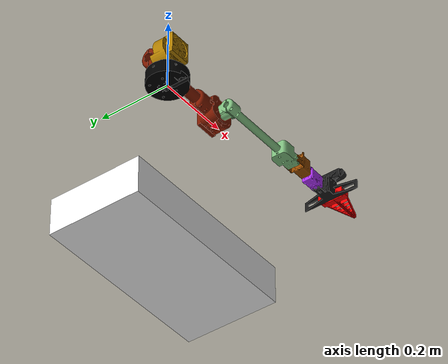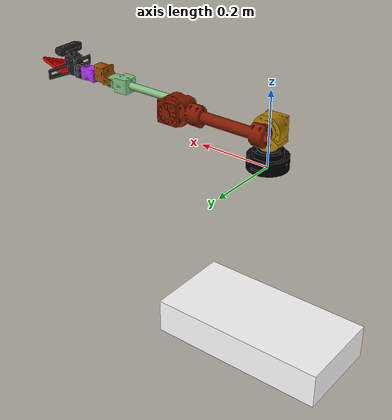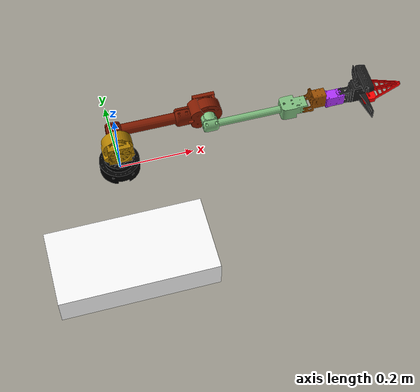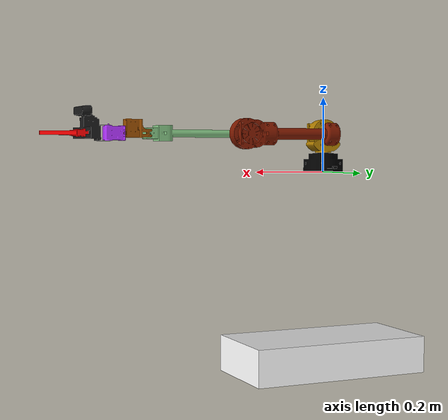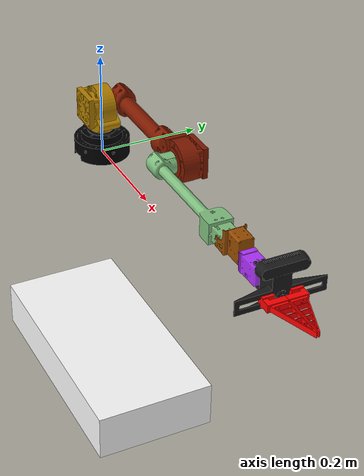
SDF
<?xml version="1.0" encoding="utf-8"?>
<sdf version='1.7'>
  <model name='st_arm'>

<!-- rotating base joint -->
    <joint name='rbq3_base_joint' type='universal'>
      <child>rbq3_base_link</child>
      <parent>world</parent>
      <axis>
        <xyz>1 0 0</xyz>
        <dynamics>
          <friction>0</friction>
          <damping>0</damping>
        </dynamics>
        <limit>
          <lower>-1e+16</lower>
          <upper>1e+16</upper>
        </limit>
        <dynamics>
          <spring_reference>0</spring_reference>
          <spring_stiffness>0</spring_stiffness>
        </dynamics>
        <use_parent_model_frame>1</use_parent_model_frame>
      </axis>
      <axis2>
        <xyz>0 1 0</xyz>
        <limit>
          <lower>-1e+16</lower>
          <upper>1e+16</upper>
        </limit>
        <dynamics>
          <spring_reference>0</spring_reference>
          <spring_stiffness>0</spring_stiffness>
        </dynamics>
        <use_parent_model_frame>1</use_parent_model_frame>
      </axis2>
    </joint>

    <link name='rbq3_base_link'>
      <pose frame=''>0 0 -0.5 0 0 0</pose>
      <inertial>
        <pose frame=''>0 0 0 0 0 0</pose>
        <mass>10.0</mass>
        <inertia>
          <ixx>4.17708333</ixx>
          <ixy>0</ixy>
          <ixz>0</ixz>
          <iyy>4.17708333</iyy>
          <iyz>0</iyz>
          <izz>8.33333333</izz>
        </inertia>
      </inertial>
      <self_collide>1</self_collide>
      <collision name='rbq3_base_link_collision'>
        <pose frame=''>0 0 0 0 0 0</pose>
        <geometry>
          <box>
            <size>0.5 0.25 0.1</size>
          </box>
        </geometry>
      </collision>
      <visual name='rbq3_base_link_visual'>
        <pose frame=''>0 0 0 0 -0 0</pose>
        <geometry>
          <box>
            <size>0.5 0.25 0.1</size>
          </box>
        </geometry>
        <material>
          <ambient>20 20 20 1</ambient>
          <diffuse>1 1 1 1</diffuse>
          <emissive>0 0 0 1</emissive>
          <specular>0 0 0 0</specular>
        </material>
      </visual>
      <sensor name='rbq3_base_imu' type='imu'>
        <pose frame=''>0 0 0 0 0 0</pose>
        <imu>
          <angular_velocity>
            <x> <noise type='none'></noise> </x>
            <y> <noise type='none'></noise> </y>
            <z> <noise type='none'></noise> </z>
          </angular_velocity>
          <linear_acceleration>
            <x> <noise type='none'></noise> </x>
            <y> <noise type='none'></noise> </y>
            <z> <noise type='none'></noise> </z>
          </linear_acceleration>
        </imu>
        <always_on>1</always_on>
        <update_rate>1000</update_rate>
      </sensor>
    </link>

    <joint name='manipulator_base_joint' type='fixed'>
      <child>manipulator_base_link</child>
      <parent>rbq3_base_link</parent>
      <axis>
        <xyz>0 0 0</xyz>
        <limit>
          <lower>-1e+16</lower>
          <upper>1e+16</upper>
        </limit>
        <dynamics>
          <spring_reference>0</spring_reference>
          <spring_stiffness>0</spring_stiffness>
        </dynamics>
        <use_parent_model_frame>1</use_parent_model_frame>
      </axis>
    </joint>

    <link name='manipulator_base_link'>
      <inertial>
        <pose>0 0.000334 0.031072 0 -0 0</pose>
        <mass>0.594687</mass>
        <inertia>
          <ixx>0.000331218</ixx>
          <ixy>-4.35299e-13</ixy>
          <ixz>1.53068e-12</ixz>
          <iyy>0.000348337</iyy>
          <iyz>2.26266e-06</iyz>
          <izz>0.000569437</izz>
        </inertia>
      </inertial>
      <visual name='manipulator_base_link_visual'>
        <pose>0 0 0 0 -0 0</pose>
        <geometry>
          <mesh>
            <scale>1 1 1</scale>
            <uri>model://st_arm_description/meshes/stl/base_link.STL</uri>
          </mesh>
        </geometry>
        <material>
          <ambient>0.0 0.0 0.0 1</ambient>
        </material>
      </visual>
    </link>
    <joint name='shoulder_yaw_joint' type='revolute'>
      <pose relative_to='manipulator_base_link'>0 0 0 0 -0 0</pose>
      <parent>manipulator_base_link</parent>
      <child>shoulder_yaw_link</child>
      <axis>
        <xyz>0 0 1</xyz>
        <limit>
          <lower>-3.14</lower>
          <upper>3.14</upper>
          <effort>1</effort>
          <velocity>1</velocity>
        </limit>
        <dynamics>
          <damping>0.1</damping>
          <friction>0.1</friction>
          <spring_reference>0</spring_reference>
          <spring_stiffness>0</spring_stiffness>
        </dynamics>
      </axis>
    </joint>
    <link name='shoulder_yaw_link'>
      <pose relative_to='shoulder_yaw_joint'>0 0 0 0 -0 0</pose>
      <inertial>
        <pose>7.6e-05 -0.001995 0.099983 0 -0 0</pose>
        <mass>0.552307</mass>
        <inertia>
          <ixx>0.000249126</ixx>
          <ixy>8.298e-07</ixy>
          <ixz>4.85171e-07</ixz>
          <iyy>0.000406785</iyy>
          <iyz>2.59356e-07</iyz>
          <izz>0.000263429</izz>
        </inertia>
      </inertial>
      <visual name='shoulder_yaw_link_visual'>
        <pose>0 0 0 0 -0 0</pose>
        <geometry>
          <mesh>
            <scale>1 1 1</scale>
            <uri>model://st_arm_description/meshes/stl/shoulder_yaw_link.STL</uri>
          </mesh>
        </geometry>
        <material>
          <ambient>0.7 0.5 0 1</ambient>
        </material>
      </visual>
    </link>
    <joint name='shoulder_pitch_joint' type='revolute'>
      <pose relative_to='shoulder_yaw_link'>0 0 0.1019 0 -0 0</pose>
      <parent>shoulder_yaw_link</parent>
      <child>shoulder_pitch_link</child>
      <axis>
        <xyz>0 1 0</xyz>
        <limit>
          <lower>-3.9</lower>
          <upper>0.76</upper>
          <effort>1</effort>
          <velocity>1</velocity>
        </limit>
        <dynamics>
          <damping>0.1</damping>
          <friction>0.1</friction>
          <spring_reference>0</spring_reference>
          <spring_stiffness>0</spring_stiffness>
        </dynamics>
      </axis>
    </joint>
    <link name='shoulder_pitch_link'>
      <pose relative_to='shoulder_pitch_joint'>0 0 0 0 -0 0</pose>
      <inertial>
        <pose>0.222042 0.045737 -0 0 -0 0</pose>
        <mass>0.653268</mass>
        <inertia>
          <ixx>0.000286326</ixx>
          <ixy>-1.49184e-07</ixy>
          <ixz>-1.16084e-10</ixz>
          <iyy>0.000648405</iyy>
          <iyz>-1.03192e-10</iyz>
          <izz>0.000486228</izz>
        </inertia>
      </inertial>
      <visual name='shoulder_pitch_link_visual'>
        <pose>0 0 0 0 -0 0</pose>
        <geometry>
          <mesh>
            <scale>1 1 1</scale>
            <uri>model://st_arm_description/meshes/stl/shoulder_pitch_link.STL</uri>
          </mesh>
        </geometry>
        <material>
          <ambient>0.5 0.1 0 1</ambient>
        </material>
      </visual>
    </link>
    <joint name='elbow_pitch_joint' type='revolute'>
      <pose relative_to='shoulder_pitch_link'>0.25 0 0 0 -0 0</pose>
      <parent>shoulder_pitch_link</parent>
      <child>elbow_pitch_link</child>
      <axis>
        <xyz>0 1 0</xyz>
        <limit>
          <lower>-2.9</lower>
          <upper>2.9</upper>
          <effort>1</effort>
          <velocity>1</velocity>
        </limit>
        <dynamics>
          <damping>0.1</damping>
          <friction>0.1</friction>
          <spring_reference>0</spring_reference>
          <spring_stiffness>0</spring_stiffness>
        </dynamics>
      </axis>
    </joint>
    <link name='elbow_pitch_link'>
      <pose relative_to='elbow_pitch_joint'>0 0 0 0 -0 0</pose>
      <inertial>
        <pose>0.170445 0.001209 4.8e-05 0 -0 0</pose>
        <mass>0.170292</mass>
        <inertia>
          <ixx>3.02042e-05</ixx>
          <ixy>-6.35247e-08</ixy>
          <ixz>-2.34242e-10</ixz>
          <iyy>0.000198778</iyy>
          <iyz>-1.0909e-10</iyz>
          <izz>0.000200818</izz>
        </inertia>
      </inertial>
      <visual name='elbow_pitch_link_visual'>
        <pose>0 0 0 0 -0 0</pose>
        <geometry>
          <mesh>
            <scale>1 1 1</scale>
            <uri>model://st_arm_description/meshes/stl/elbow_pitch_link.STL</uri>
          </mesh>
        </geometry>
        <material>
          <ambient>0.5 0.75 0.5 1</ambient>
        </material>
      </visual>
    </link>
    <joint name='wrist_pitch_joint' type='revolute'>
      <pose relative_to='elbow_pitch_link'>0.25 0 0 0 -0 0</pose>
      <parent>elbow_pitch_link</parent>
      <child>wrist_pitch_link</child>
      <axis>
        <xyz>0 1 0</xyz>
        <limit>
          <lower>-1.57</lower>
          <upper>1.57</upper>
          <effort>1</effort>
          <velocity>1</velocity>
        </limit>
        <dynamics>
          <damping>0.1</damping>
          <friction>0.1</friction>
          <spring_reference>0</spring_reference>
          <spring_stiffness>0</spring_stiffness>
        </dynamics>
      </axis>
    </joint>
    <link name='wrist_pitch_link'>
      <pose relative_to='wrist_pitch_joint'>0 0 0 0 -0 0</pose>
      <inertial>
        <pose>0.042786 -0 0.01133 0 -0 0</pose>
        <mass>0.0923461</mass>
        <inertia>
          <ixx>2.36446e-05</ixx>
          <ixy>2.03859e-14</ixy>
          <ixz>-3.88711e-07</ixz>
          <iyy>2.44308e-05</iyy>
          <iyz>1.60956e-14</iyz>
          <izz>1.6139e-05</izz>
        </inertia>
      </inertial>
      <visual name='wrist_pitch_link_visual'>
        <pose>0 0 0 0 -0 0</pose>
        <geometry>
          <mesh>
            <scale>1 1 1</scale>
            <uri>model://st_arm_description/meshes/stl/wrist_pitch_link.STL</uri>
          </mesh>
        </geometry>
        <material>
          <ambient>0.6 0.3 0.0 1</ambient>
        </material>
      </visual>
    </link>
    <joint name='wrist_roll_joint' type='revolute'>
      <pose relative_to='wrist_pitch_link'>0 0 0 0 -0 0</pose>
      <parent>wrist_pitch_link</parent>
      <child>wrist_roll_link</child>
      <axis>
        <xyz>1 0 0</xyz>
        <limit>
          <lower>-1.57</lower>
          <upper>1.57</upper>
          <effort>1</effort>
          <velocity>1</velocity>
        </limit>
        <dynamics>
          <damping>0.1</damping>
          <friction>0.1</friction>
          <spring_reference>0</spring_reference>
          <spring_stiffness>0</spring_stiffness>
        </dynamics>
      </axis>
    </joint>
    <link name='wrist_roll_link'>
      <pose relative_to='wrist_roll_joint'>0 0 0 0 -0 0</pose>
      <inertial>
        <pose>0.091375 0 0.000362 0 -0 0</pose>
        <mass>0.0869629</mass>
        <inertia>
          <ixx>1.41812e-05</ixx>
          <ixy>-9.57639e-15</ixy>
          <ixz>2.92507e-09</ixz>
          <iyy>2.29933e-05</iyy>
          <iyz>1.70366e-16</iyz>
          <izz>1.9671e-05</izz>
        </inertia>
      </inertial>
      <visual name='wrist_roll_link_visual'>
        <pose>0 0 0 0 -0 0</pose>
        <geometry>
          <mesh>
            <scale>1 1 1</scale>
            <uri>model://st_arm_description/meshes/stl/wrist_roll_link.STL</uri>
          </mesh>
        </geometry>
        <material>
          <ambient>0.7 0.2 1 1</ambient>
        </material>
      </visual>
    </link>
    <joint name='wrist_yaw_joint' type='revolute'>
      <pose relative_to='wrist_roll_link'>0.1045 0 0 0 -0 0</pose>
      <parent>wrist_roll_link</parent>
      <child>wrist_yaw_link</child>
      <axis>
        <xyz>0 0 1</xyz>
        <limit>
          <lower>-2</lower>
          <upper>2</upper>
          <effort>1</effort>
          <velocity>1</velocity>
        </limit>
        <dynamics>
          <damping>0.1</damping>
          <friction>0.1</friction>
          <spring_reference>0</spring_reference>
          <spring_stiffness>0</spring_stiffness>
        </dynamics>
      </axis>
    </joint>
    <link name='wrist_yaw_link'>
      <pose relative_to='wrist_yaw_joint'>0 0 0 0 -0 0</pose>
      <inertial>
        <pose>0.052108 0.000348 0.022185 0 -0 0</pose>
        <mass>0.148763</mass>
        <inertia>
          <ixx>6.90068e-05</ixx>
          <ixy>2.51082e-07</ixy>
          <ixz>4.81485e-07</ixz>
          <iyy>3.3479e-05</iyy>
          <iyz>-1.73104e-09</iyz>
          <izz>5.62471e-05</izz>
        </inertia>
      </inertial>
      <visual name='wrist_yaw_link_visual'>
        <pose>0 0 0 0 -0 0</pose>
        <geometry>
          <mesh>
            <scale>1 1 1</scale>
            <uri>model://st_arm_description/meshes/stl/wrist_yaw_link.STL</uri>
          </mesh>
        </geometry>
        <material>
          <ambient>0.1 0.1 0.1 1</ambient>
        </material>
      </visual>
    </link>
    <joint name='gripper_left_joint' type='prismatic'>
      <pose relative_to='wrist_yaw_link'>0.083595 0 0 0 -0 0</pose>
      <parent>wrist_yaw_link</parent>
      <child>gripper_left_link</child>
      <axis>
        <xyz>0 -1 0</xyz>
        <limit>
          <lower>-0.03</lower>
          <upper>0</upper>
          <effort>1</effort>
          <velocity>1</velocity>
        </limit>
        <dynamics>
          <damping>0.1</damping>
          <friction>0.1</friction>
          <spring_reference>0</spring_reference>
          <spring_stiffness>0</spring_stiffness>
        </dynamics>
      </axis>
    </joint>
    <link name='gripper_left_link'>
      <pose relative_to='gripper_left_joint'>0 0 0 0 -0 0</pose>
      <inertial>
        <pose>0 0 0 0 -0 0</pose>
        <mass>0.0001</mass>
        <inertia>
          <ixx>1e-16</ixx>
          <ixy>1e-16</ixy>
          <ixz>1e-16</ixz>
          <iyy>1e-16</iyy>
          <iyz>1e-16</iyz>
          <izz>1e-16</izz>
        </inertia>
      </inertial>
      <collision name='gripper_left_link_collision'>
        <pose>0 0 0 0 -0 0</pose>
        <geometry>
          <mesh>
            <scale>1 1 1</scale>
            <uri>model://st_arm_description/meshes/stl/gripper_left_link.STL</uri>
          </mesh>
        </geometry>
      </collision>
      <visual name='gripper_left_link_visual'>
        <pose>0 0 0 0 -0 0</pose>
        <geometry>
          <mesh>
            <scale>1 1 1</scale>
            <uri>model://st_arm_description/meshes/stl/gripper_left_link.STL</uri>
          </mesh>
        </geometry>
        <material>
          <ambient>1 0 0 1</ambient>
        </material>
      </visual>
    </link>
    <joint name='gripper_right_joint' type='prismatic'>
      <pose relative_to='wrist_yaw_link'>0.083595 0 0 0 -0 0</pose>
      <parent>wrist_yaw_link</parent>
      <child>gripper_right_link</child>
      <axis>
        <xyz>0 1 0</xyz>
        <limit>
          <lower>-0.03</lower>
          <upper>0</upper>
          <effort>1</effort>
          <velocity>1</velocity>
        </limit>
        <dynamics>
          <damping>0.1</damping>
          <friction>0.1</friction>
          <spring_reference>0</spring_reference>
          <spring_stiffness>0</spring_stiffness>
        </dynamics>
      </axis>
    </joint>
    <link name='gripper_right_link'>
      <pose relative_to='gripper_right_joint'>0 0 0 0 -0 0</pose>
      <inertial>
        <pose>0 0 0 0 -0 0</pose>
        <mass>0.0001</mass>
        <inertia>
          <ixx>1e-16</ixx>
          <ixy>1e-16</ixy>
          <ixz>1e-16</ixz>
          <iyy>1e-16</iyy>
          <iyz>1e-16</iyz>
          <izz>1e-16</izz>
        </inertia>
      </inertial>
      <collision name='gripper_right_link_collision'>
        <pose>0 0 0 0 -0 0</pose>
        <geometry>
          <mesh>
            <scale>1 1 1</scale>
            <uri>model://st_arm_description/meshes/stl/gripper_right_link.STL</uri>
          </mesh>
        </geometry>
      </collision>
      <visual name='gripper_right_link_visual'>
        <pose>0 0 0 0 -0 0</pose>
        <geometry>
          <mesh>
            <scale>1 1 1</scale>
            <uri>model://st_arm_description/meshes/stl/gripper_right_link.STL</uri>
          </mesh>
        </geometry>
        <material>
          <ambient>1 0 0 1</ambient>
        </material>
      </visual>
    </link>
  </model>
</sdf>
